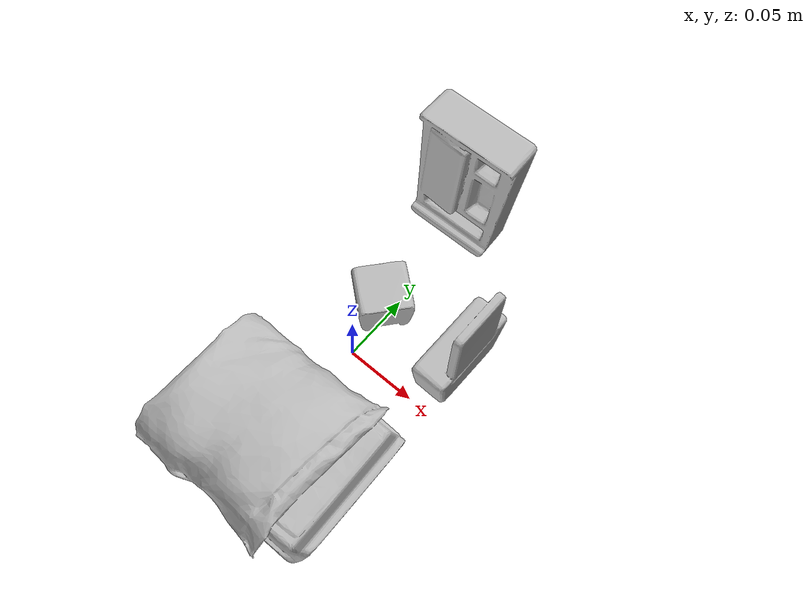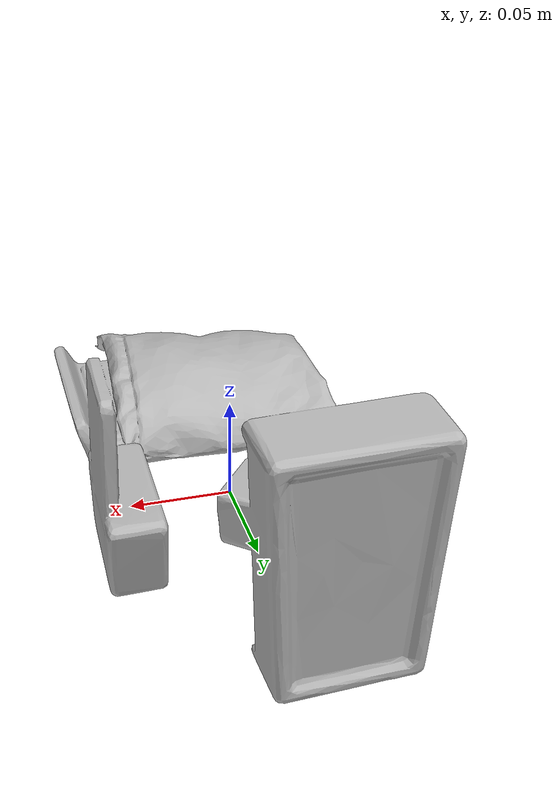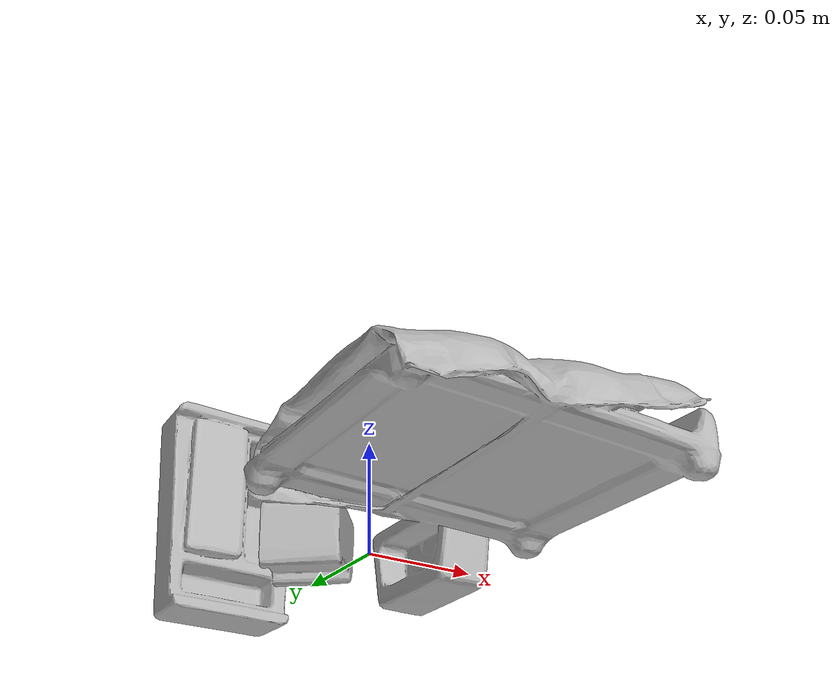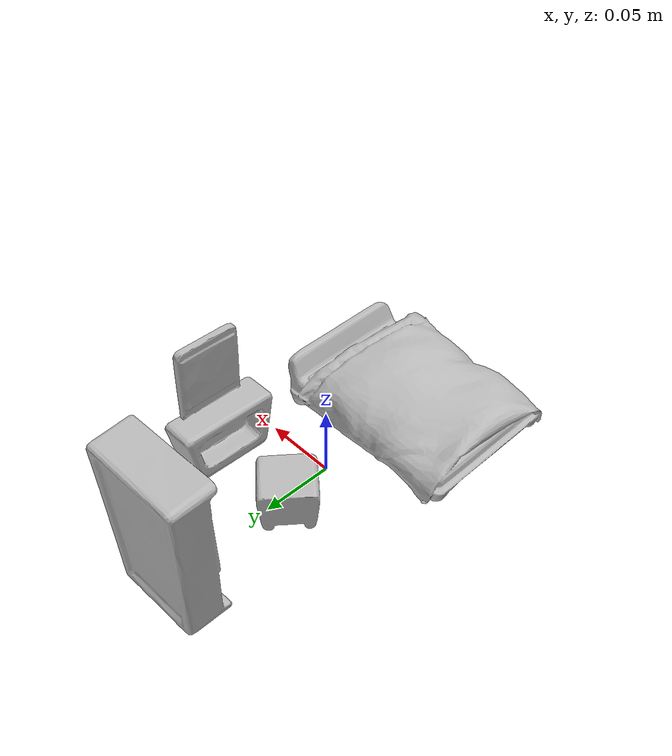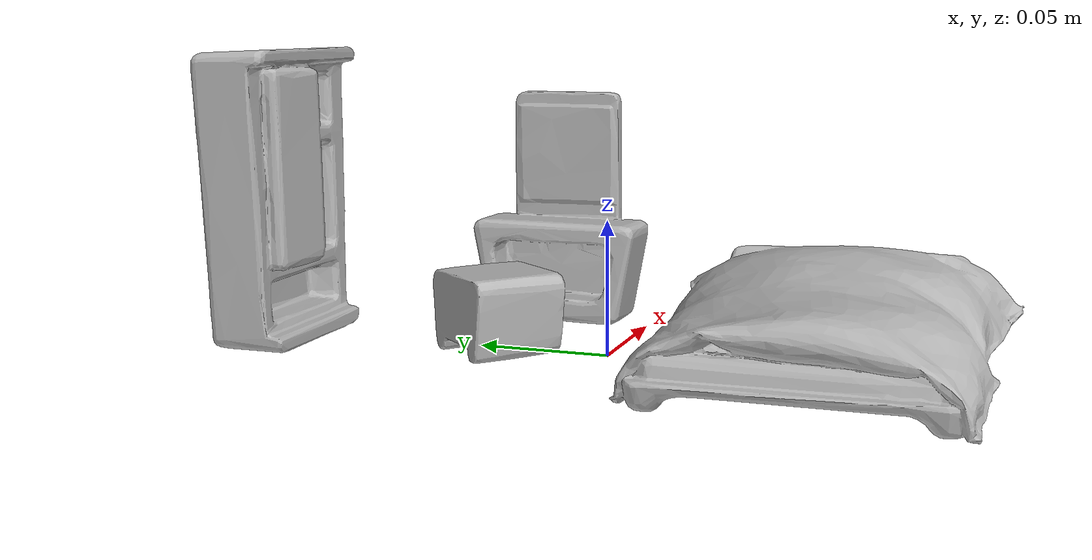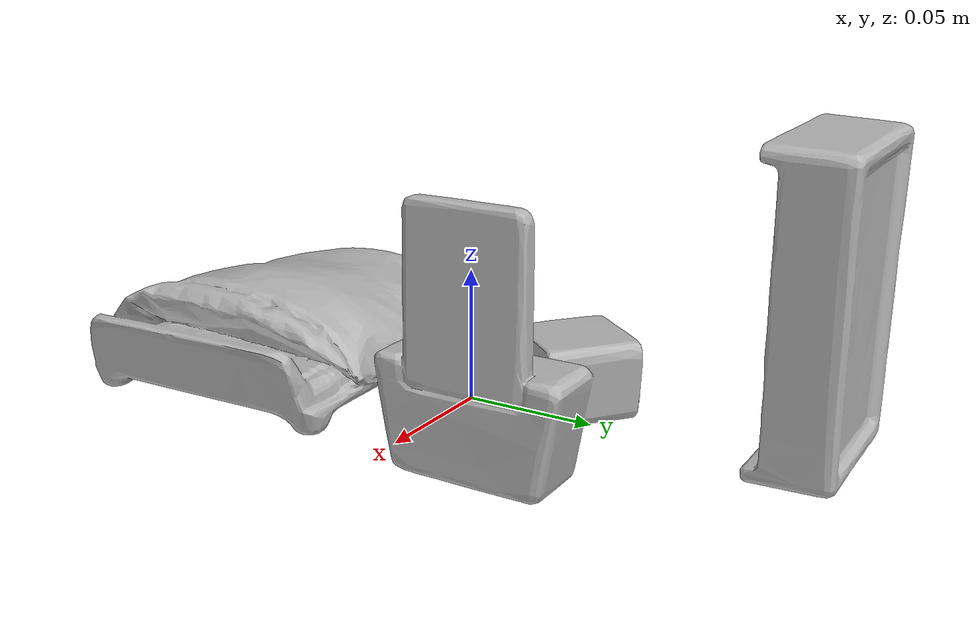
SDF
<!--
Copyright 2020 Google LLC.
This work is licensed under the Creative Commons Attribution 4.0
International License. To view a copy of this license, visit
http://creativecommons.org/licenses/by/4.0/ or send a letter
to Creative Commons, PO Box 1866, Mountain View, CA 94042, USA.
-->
<?xml version="1.0" ?>
<sdf version="1.6">
  <model name="PARENT_ROOM_FURNITURE_SET_1_DLKEy8H4mwK">
    <link name="link_0">
      <visual name="visual">
        <geometry>
          <mesh>
            <uri>meshes/model.obj</uri>
          </mesh>
        </geometry>
      </visual>
      <collision name="collision_0">
        <geometry>
          <mesh>
            <uri>meshes/model.obj</uri>
          </mesh>
        </geometry>
      </collision>
    </link>
  </model>
</sdf>
